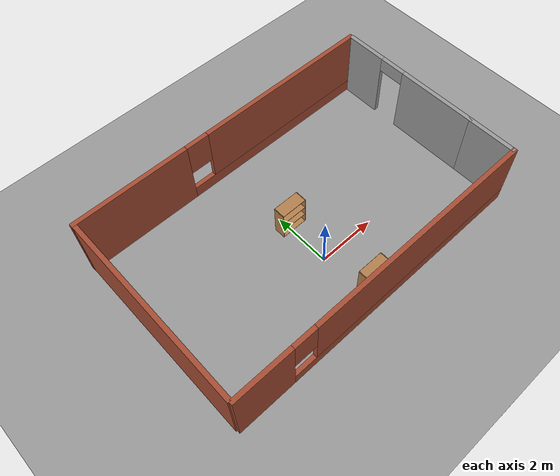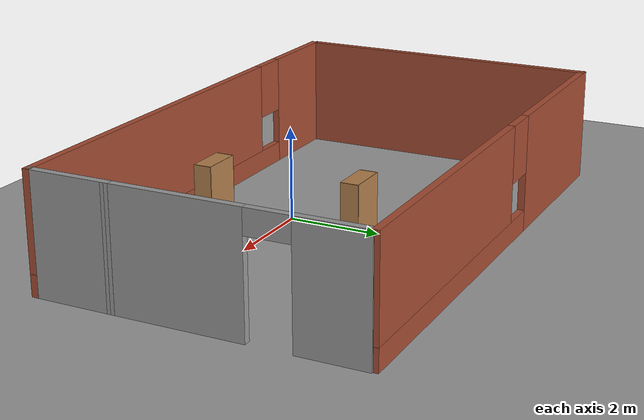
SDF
<sdf version="1.7">
 <world name="default">
  <light name="sun" type="directional">
   <pose>0 0 10 0 -0 0</pose>
   <diffuse>0.8 0.8 0.8 1</diffuse>
   <specular>0.2 0.2 0.2 1</specular>
   <attenuation>
    <range>1000</range>
    <constant>0.9</constant>
    <linear>0.01</linear>
    <quadratic>0.001</quadratic>
   </attenuation>
   <direction>-0.5 0.1 -0.9</direction>
   <spot><inner_angle>0</inner_angle><outer_angle>0</outer_angle><falloff>0</falloff></spot>
  </light>
  <model name="ground_plane">
   <static>1</static>
   <link name="link">
    <collision name="collision">
     <geometry><plane><normal>0 0 1</normal><size>100 100</size></plane></geometry>
     <surface><friction><ode><mu>100</mu><mu2>50</mu2></ode></friction></surface>
    </collision>
    <visual name="visual">
     <cast_shadows>0</cast_shadows>
     <geometry><plane><normal>0 0 1</normal><size>100 100</size></plane></geometry>
     <material>
      <script><uri>file://media/materials/scripts/gazebo.material</uri><name>Gazebo/Grey</name></script>
     </material>
    </visual>
   </link>
  </model>
  <gravity>0 0 -9.8</gravity>
  <magnetic_field>6e-06 2.3e-05 -4.2e-05</magnetic_field>
  <atmosphere type="adiabatic"/>
  <physics type="ode">
   <max_step_size>0.001</max_step_size>
   <real_time_factor>1</real_time_factor>
   <real_time_update_rate>1000</real_time_update_rate>
  </physics>
  <scene><ambient>0.4 0.4 0.4 1</ambient><background>0.7 0.7 0.7 1</background><shadows>1</shadows></scene>
  <audio><device>default</device></audio>
  <spherical_coordinates>
   <surface_model>EARTH_WGS84</surface_model>
   <latitude_deg>0</latitude_deg>
   <longitude_deg>0</longitude_deg>
   <elevation>0</elevation>
   <heading_deg>0</heading_deg>
  </spherical_coordinates>
  <model name="bookshelf">
   <static>1</static>
   <link name="link">
    <inertial><mass>1</mass></inertial>
    <collision name="back">
     <pose>0 0.005 0.6 0 -0 0</pose>
     <geometry><box><size>0.9 0.01 1.2</size></box></geometry>
    </collision>
    <visual name="visual1">
     <pose>0 0.005 0.6 0 -0 0</pose>
     <geometry><box><size>0.9 0.01 1.2</size></box></geometry>
     <material>
      <script><uri>file://media/materials/scripts/gazebo.material</uri><name>Gazebo/Wood</name></script>
     </material>
    </visual>
    <collision name="left_side">
     <pose>0.45 -0.195 0.6 0 -0 0</pose>
     <geometry><box><size>0.02 0.4 1.2</size></box></geometry>
    </collision>
    <visual name="visual2">
     <pose>0.45 -0.195 0.6 0 -0 0</pose>
     <geometry><box><size>0.02 0.4 1.2</size></box></geometry>
     <material>
      <script><uri>file://media/materials/scripts/gazebo.material</uri><name>Gazebo/Wood</name></script>
     </material>
    </visual>
    <collision name="right_side">
     <pose>-0.45 -0.195 0.6 0 -0 0</pose>
     <geometry><box><size>0.02 0.4 1.2</size></box></geometry>
    </collision>
    <visual name="visual3">
     <pose>-0.45 -0.195 0.6 0 -0 0</pose>
     <geometry><box><size>0.02 0.4 1.2</size></box></geometry>
     <material>
      <script><uri>file://media/materials/scripts/gazebo.material</uri><name>Gazebo/Wood</name></script>
     </material>
    </visual>
    <collision name="bottom">
     <pose>0 -0.195 0.03 0 -0 0</pose>
     <geometry><box><size>0.88 0.4 0.06</size></box></geometry>
    </collision>
    <visual name="visual4">
     <pose>0 -0.195 0.03 0 -0 0</pose>
     <geometry><box><size>0.88 0.4 0.06</size></box></geometry>
     <material>
      <script><uri>file://media/materials/scripts/gazebo.material</uri><name>Gazebo/Wood</name></script>
     </material>
    </visual>
    <collision name="top">
     <pose>0 -0.195 1.19 0 -0 0</pose>
     <geometry><box><size>0.88 0.4 0.02</size></box></geometry>
    </collision>
    <visual name="visual5">
     <pose>0 -0.195 1.19 0 -0 0</pose>
     <geometry><box><size>0.88 0.4 0.02</size></box></geometry>
     <material>
      <script><uri>file://media/materials/scripts/gazebo.material</uri><name>Gazebo/Wood</name></script>
     </material>
    </visual>
    <collision name="low_shelf">
     <pose>0 -0.195 0.43 0 -0 0</pose>
     <geometry><box><size>0.88 0.4 0.02</size></box></geometry>
    </collision>
    <visual name="visual6">
     <pose>0 -0.195 0.43 0 -0 0</pose>
     <geometry><box><size>0.88 0.4 0.02</size></box></geometry>
     <material>
      <script><uri>file://media/materials/scripts/gazebo.material</uri><name>Gazebo/Wood</name></script>
     </material>
    </visual>
    <collision name="high_shelf">
     <pose>0 -0.195 0.8 0 -0 0</pose>
     <geometry><box><size>0.88 0.4 0.02</size></box></geometry>
    </collision>
    <visual name="visual7">
     <pose>0 -0.195 0.8 0 -0 0</pose>
     <geometry><box><size>0.88 0.4 0.02</size></box></geometry>
     <material>
      <script><uri>file://media/materials/scripts/gazebo.material</uri><name>Gazebo/Wood</name></script>
     </material>
    </visual>
   </link>
   <pose>0.106556 1.80778 0 0 -0 0</pose>
  </model>
  <model name="bookshelf_0">
   <static>1</static>
   <link name="link">
    <inertial><mass>1</mass></inertial>
    <collision name="back">
     <pose>0 0.005 0.6 0 -0 0</pose>
     <geometry><box><size>0.9 0.01 1.2</size></box></geometry>
    </collision>
    <visual name="visual1">
     <pose>0 0.005 0.6 0 -0 0</pose>
     <geometry><box><size>0.9 0.01 1.2</size></box></geometry>
     <material>
      <script><uri>file://media/materials/scripts/gazebo.material</uri><name>Gazebo/Wood</name></script>
     </material>
    </visual>
    <collision name="left_side">
     <pose>0.45 -0.195 0.6 0 -0 0</pose>
     <geometry><box><size>0.02 0.4 1.2</size></box></geometry>
    </collision>
    <visual name="visual2">
     <pose>0.45 -0.195 0.6 0 -0 0</pose>
     <geometry><box><size>0.02 0.4 1.2</size></box></geometry>
     <material>
      <script><uri>file://media/materials/scripts/gazebo.material</uri><name>Gazebo/Wood</name></script>
     </material>
    </visual>
    <collision name="right_side">
     <pose>-0.45 -0.195 0.6 0 -0 0</pose>
     <geometry><box><size>0.02 0.4 1.2</size></box></geometry>
    </collision>
    <visual name="visual3">
     <pose>-0.45 -0.195 0.6 0 -0 0</pose>
     <geometry><box><size>0.02 0.4 1.2</size></box></geometry>
     <material>
      <script><uri>file://media/materials/scripts/gazebo.material</uri><name>Gazebo/Wood</name></script>
     </material>
    </visual>
    <collision name="bottom">
     <pose>0 -0.195 0.03 0 -0 0</pose>
     <geometry><box><size>0.88 0.4 0.06</size></box></geometry>
    </collision>
    <visual name="visual4">
     <pose>0 -0.195 0.03 0 -0 0</pose>
     <geometry><box><size>0.88 0.4 0.06</size></box></geometry>
     <material>
      <script><uri>file://media/materials/scripts/gazebo.material</uri><name>Gazebo/Wood</name></script>
     </material>
    </visual>
    <collision name="top">
     <pose>0 -0.195 1.19 0 -0 0</pose>
     <geometry><box><size>0.88 0.4 0.02</size></box></geometry>
    </collision>
    <visual name="visual5">
     <pose>0 -0.195 1.19 0 -0 0</pose>
     <geometry><box><size>0.88 0.4 0.02</size></box></geometry>
     <material>
      <script><uri>file://media/materials/scripts/gazebo.material</uri><name>Gazebo/Wood</name></script>
     </material>
    </visual>
    <collision name="low_shelf">
     <pose>0 -0.195 0.43 0 -0 0</pose>
     <geometry><box><size>0.88 0.4 0.02</size></box></geometry>
    </collision>
    <visual name="visual6">
     <pose>0 -0.195 0.43 0 -0 0</pose>
     <geometry><box><size>0.88 0.4 0.02</size></box></geometry>
     <material>
      <script><uri>file://media/materials/scripts/gazebo.material</uri><name>Gazebo/Wood</name></script>
     </material>
    </visual>
    <collision name="high_shelf">
     <pose>0 -0.195 0.8 0 -0 0</pose>
     <geometry><box><size>0.88 0.4 0.02</size></box></geometry>
    </collision>
    <visual name="visual7">
     <pose>0 -0.195 0.8 0 -0 0</pose>
     <geometry><box><size>0.88 0.4 0.02</size></box></geometry>
     <material>
      <script><uri>file://media/materials/scripts/gazebo.material</uri><name>Gazebo/Wood</name></script>
     </material>
    </visual>
   </link>
   <pose>0.434304 -1.41595 0 0 -0 0</pose>
  </model>
  <model name="ground_plane_0">
   <static>1</static>
   <link name="link">
    <collision name="collision">
     <geometry><plane><normal>0 0 1</normal><size>100 100</size></plane></geometry>
     <surface><friction><ode><mu>100</mu><mu2>50</mu2></ode></friction></surface>
    </collision>
    <visual name="visual">
     <cast_shadows>0</cast_shadows>
     <geometry><plane><normal>0 0 1</normal><size>100 100</size></plane></geometry>
     <material>
      <script><uri>file://media/materials/scripts/gazebo.material</uri><name>Gazebo/Grey</name></script>
     </material>
    </visual>
   </link>
   <pose>1.62192 1.30167 0 0 -0 0</pose>
  </model>
  <model name="test">
   <pose>0.21015 1.2 0 0 -0 0</pose>
   <link name="Wall_10">
    <collision name="Wall_10_Collision">
     <geometry><box><size>6.75 0.15 2.5</size></box></geometry>
     <pose>0 0 1.25 0 -0 0</pose>
    </collision>
    <visual name="Wall_10_Visual">
     <pose>0 0 1.25 0 -0 0</pose>
     <geometry><box><size>6.75 0.15 2.5</size></box></geometry>
     <material>
      <script><uri>file://media/materials/scripts/gazebo.material</uri><name>Gazebo/Bricks</name></script>
      <ambient>1 1 1 1</ambient>
     </material>
     <meta><layer>0</layer></meta>
    </visual>
    <pose>-5.44015 0.05 0 0 -0 -1.5708</pose>
   </link>
   <link name="Wall_12">
    <collision name="Wall_12_Collision">
     <geometry><box><size>1.75 0.15 2.5</size></box></geometry>
     <pose>0 0 1.25 0 -0 0</pose>
    </collision>
    <visual name="Wall_12_Visual">
     <pose>0 0 1.25 0 -0 0</pose>
     <geometry><box><size>1.75 0.15 2.5</size></box></geometry>
     <material>
      <script><uri>file://media/materials/scripts/gazebo.material</uri><name>Gazebo/Grey</name></script>
      <ambient>1 1 1 1</ambient>
     </material>
     <meta><layer>0</layer></meta>
    </visual>
    <pose>5.44985 -2.5 0 0 -0 -1.5708</pose>
   </link>
   <link name="Wall_14">
    <pose>0.02485 -3.36 0 0 -0 0</pose>
    <visual name="Wall_14_Visual_0">
     <pose>-4.4975 0 1.25 0 -0 0</pose>
     <geometry><box><size>2.005 0.15 2.5</size></box></geometry>
     <material>
      <script><uri>file://media/materials/scripts/gazebo.material</uri><name>Gazebo/Bricks</name></script>
      <ambient>1 1 1 1</ambient>
     </material>
     <meta><layer>0</layer></meta>
    </visual>
    <collision name="Wall_14_Collision_0">
     <geometry><box><size>2.005 0.15 2.5</size></box></geometry>
     <pose>-4.4975 0 1.25 0 -0 0</pose>
    </collision>
    <visual name="Wall_14_Visual_1">
     <pose>1.0025 0 0.25 0 -0 0</pose>
     <geometry><box><size>8.995 0.15 0.5</size></box></geometry>
     <material>
      <script><uri>file://media/materials/scripts/gazebo.material</uri><name>Gazebo/Bricks</name></script>
      <ambient>1 1 1 1</ambient>
     </material>
     <meta><layer>0</layer></meta>
    </visual>
    <collision name="Wall_14_Collision_1">
     <geometry><box><size>8.995 0.15 0.5</size></box></geometry>
     <pose>1.0025 0 0.25 0 -0 0</pose>
    </collision>
    <visual name="Wall_14_Visual_2">
     <pose>1.4025 0 1.5 0 -0 0</pose>
     <geometry><box><size>8.195 0.15 2</size></box></geometry>
     <material>
      <script><uri>file://media/materials/scripts/gazebo.material</uri><name>Gazebo/Bricks</name></script>
      <ambient>1 1 1 1</ambient>
     </material>
     <meta><layer>0</layer></meta>
    </visual>
    <collision name="Wall_14_Collision_2">
     <geometry><box><size>8.195 0.15 2</size></box></geometry>
     <pose>1.4025 0 1.5 0 -0 0</pose>
    </collision>
    <visual name="Wall_14_Visual_3">
     <pose>-3.095 0 1.9 0 -0 0</pose>
     <geometry><box><size>0.8 0.15 1.2</size></box></geometry>
     <material>
      <script><uri>file://media/materials/scripts/gazebo.material</uri><name>Gazebo/Bricks</name></script>
      <ambient>1 1 1 1</ambient>
     </material>
     <meta><layer>0</layer></meta>
    </visual>
    <collision name="Wall_14_Collision_3">
     <geometry><box><size>0.8 0.15 1.2</size></box></geometry>
     <pose>-3.095 0 1.9 0 -0 0</pose>
    </collision>
   </link>
   <link name="Wall_5">
    <pose>-0.02515 3.36 0 0 -0 0</pose>
    <visual name="Wall_5_Visual_0">
     <pose>-3.5175 0 1.25 0 -0 0</pose>
     <geometry><box><size>3.965 0.15 2.5</size></box></geometry>
     <material>
      <script><uri>file://media/materials/scripts/gazebo.material</uri><name>Gazebo/Bricks</name></script>
      <ambient>1 1 1 1</ambient>
     </material>
     <meta><layer>0</layer></meta>
    </visual>
    <collision name="Wall_5_Collision_0">
     <geometry><box><size>3.965 0.15 2.5</size></box></geometry>
     <pose>-3.5175 0 1.25 0 -0 0</pose>
    </collision>
    <visual name="Wall_5_Visual_1">
     <pose>1.9825 0 0.25 0 -0 0</pose>
     <geometry><box><size>7.035 0.15 0.5</size></box></geometry>
     <material>
      <script><uri>file://media/materials/scripts/gazebo.material</uri><name>Gazebo/Bricks</name></script>
      <ambient>1 1 1 1</ambient>
     </material>
     <meta><layer>0</layer></meta>
    </visual>
    <collision name="Wall_5_Collision_1">
     <geometry><box><size>7.035 0.15 0.5</size></box></geometry>
     <pose>1.9825 0 0.25 0 -0 0</pose>
    </collision>
    <visual name="Wall_5_Visual_2">
     <pose>2.3825 0 1.5 0 -0 0</pose>
     <geometry><box><size>6.235 0.15 2</size></box></geometry>
     <material>
      <script><uri>file://media/materials/scripts/gazebo.material</uri><name>Gazebo/Bricks</name></script>
      <ambient>1 1 1 1</ambient>
     </material>
     <meta><layer>0</layer></meta>
    </visual>
    <collision name="Wall_5_Collision_2">
     <geometry><box><size>6.235 0.15 2</size></box></geometry>
     <pose>2.3825 0 1.5 0 -0 0</pose>
    </collision>
    <visual name="Wall_5_Visual_3">
     <pose>-1.135 0 1.9 0 -0 0</pose>
     <geometry><box><size>0.8 0.15 1.2</size></box></geometry>
     <material>
      <script><uri>file://media/materials/scripts/gazebo.material</uri><name>Gazebo/Bricks</name></script>
      <ambient>1 1 1 1</ambient>
     </material>
     <meta><layer>0</layer></meta>
    </visual>
    <collision name="Wall_5_Collision_3">
     <geometry><box><size>0.8 0.15 1.2</size></box></geometry>
     <pose>-1.135 0 1.9 0 -0 0</pose>
    </collision>
   </link>
   <link name="Wall_8">
    <pose>5.43985 0.775 0 0 -0 -1.56677</pose>
    <visual name="Wall_8_Visual_0">
     <pose>-1.84231 0 1.25 0 -0 0</pose>
     <geometry><box><size>1.43543 0.15 2.5</size></box></geometry>
     <material>
      <script><uri>file://media/materials/scripts/gazebo.material</uri><name>Gazebo/Grey</name></script>
      <ambient>1 1 1 1</ambient>
     </material>
     <meta><layer>0</layer></meta>
    </visual>
    <collision name="Wall_8_Collision_0">
     <geometry><box><size>1.43543 0.15 2.5</size></box></geometry>
     <pose>-1.84231 0 1.25 0 -0 0</pose>
    </collision>
    <visual name="Wall_8_Visual_1">
     <pose>1.16771 0 1.25 0 -0 0</pose>
     <geometry><box><size>2.78461 0.15 2.5</size></box></geometry>
     <material>
      <script><uri>file://media/materials/scripts/gazebo.material</uri><name>Gazebo/Grey</name></script>
      <ambient>1 1 1 1</ambient>
     </material>
     <meta><layer>0</layer></meta>
    </visual>
    <collision name="Wall_8_Collision_1">
     <geometry><box><size>2.78461 0.15 2.5</size></box></geometry>
     <pose>1.16771 0 1.25 0 -0 0</pose>
    </collision>
    <visual name="Wall_8_Visual_2">
     <pose>-0.674592 0 2.25 0 -0 0</pose>
     <geometry><box><size>0.9 0.15 0.5</size></box></geometry>
     <material>
      <script><uri>file://media/materials/scripts/gazebo.material</uri><name>Gazebo/Grey</name></script>
      <ambient>1 1 1 1</ambient>
     </material>
     <meta><layer>0</layer></meta>
    </visual>
    <collision name="Wall_8_Collision_2">
     <geometry><box><size>0.9 0.15 0.5</size></box></geometry>
     <pose>-0.674592 0 2.25 0 -0 0</pose>
    </collision>
   </link>
   <static>1</static>
  </model>
 </world>
</sdf>
